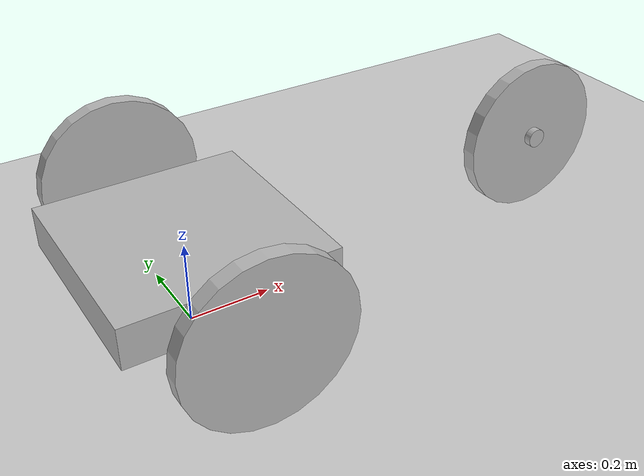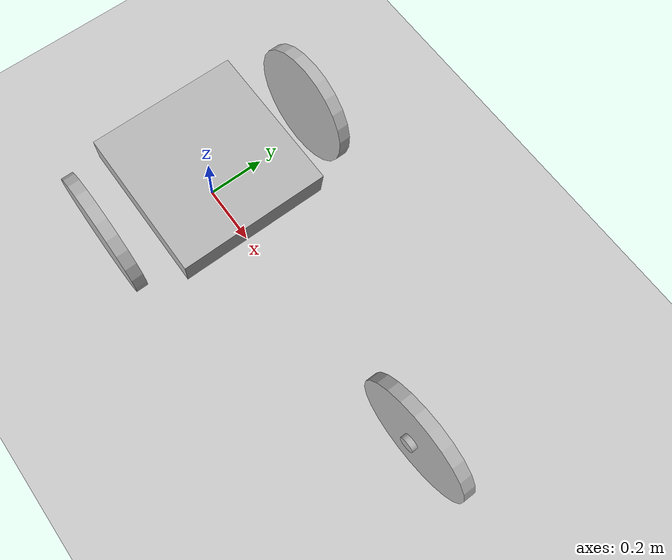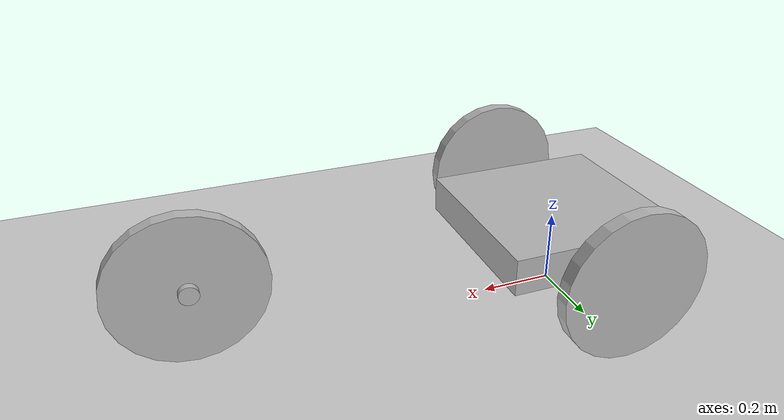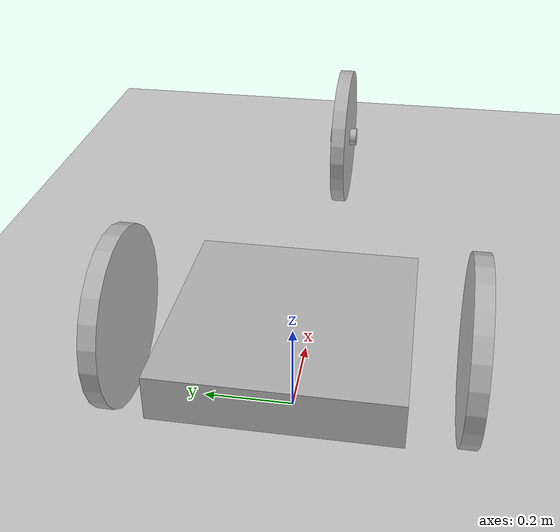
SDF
<?xml version="1.0" ?>
<sdf version="1.5">
     <world name="default">
          <!-- A global light source -->
          <include>
               <uri>model://sun</uri>
          </include>
          <!-- A ground plane -->
          <include>
               <uri>model://ground_plane</uri>
          </include>

		<include>
               <uri>model://TricycleBase</uri>
               <pose>0 0 0 0 0 0</pose>
          </include>

          <scene>
               <sky>
                    <clouds>
                         <speed>12</speed>
                    </clouds>
               </sky>
          </scene>

     </world>
</sdf>

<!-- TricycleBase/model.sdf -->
<sdf version='1.6'>
     <model name='tricycle_base'>

          <link name='base_link'>
               <pose frame=''>0 0 0 0 -0 0</pose>

               <inertial>
                    <pose frame=''>0 0 0.2 0 -0 0</pose>
                    <mass>10.001</mass>
                    <inertia>
                         <ixx>0.216767</ixx>
                         <ixy>0</ixy>
                         <ixz>0</ixz>
                         <iyy>0.216668</iyy>
                         <iyz>0</iyz>
                         <izz>0.416766</izz>
                    </inertia>
               </inertial>

               <visual name='base_link_fixed_joint_lump__chassis_visual_visual'>
                    <pose frame=''>0 0 0.2 0 -0 0</pose>
                    <geometry>
                         <box>
                              <size>0.5 0.5 0.1</size>
                         </box>
                    </geometry>
               </visual>

               <visual name='base_link_fixed_joint_lump__imu_link_visual_1'>
                    <pose frame=''>0 0 0.2 0 -0 0</pose>
                    <geometry>
                         <box>
                              <size>0.01 0.01 0.001</size>
                         </box>
                    </geometry>
               </visual>

               <collision name='base_link_fixed_joint_lump__chassis_collision'>
                    <pose frame=''>0 0 0.2 0 -0 0</pose>
                    <geometry>
                         <box>
                              <size>0.5 0.5 0.1</size>
                         </box>
                    </geometry>
               </collision>

               <collision name='base_link_fixed_joint_lump__imu_link_collision_1'>
                    <pose frame=''>0 0 0.2 0 -0 0</pose>
                    <geometry>
                         <box>
                              <size>0.01 0.01 0.001</size>
                         </box>
                    </geometry>
               </collision>
          </link>

          <link name='front_steering'>
               <pose frame=''>1 0 0.2 1.5708 -0 0</pose>
               <inertial>
                    <pose frame=''>0 0 0 0 -0 0</pose>
                    <mass>1</mass>
                    <inertia>
                         <ixx>0.000647258</ixx>
                         <ixy>0</ixy>
                         <ixz>0</ixz>
                         <iyy>0.000647258</iyy>
                         <iyz>0</iyz>
                         <izz>0.0003125</izz>
                    </inertia>
               </inertial>

               <visual name='front_steering_fixed_joint_lump__front_visual_visual'>
                    <pose frame=''>0 0 0 0 -0 0</pose>
                    <geometry>
                         <cylinder>
                              <length>0.07676</length>
                              <radius>0.025</radius>
                         </cylinder>
                    </geometry>
               </visual>
          </link>

          <link name='front_wheel'>
               <pose frame=''>1 0 0.2 1.5708 -0 0</pose>
               <gravity>1</gravity>

               <inertial>
                    <pose frame=''>0 0 0 0 -0 0</pose>
                    <mass>1</mass>
                    <inertia>
                         <ixx>0.0101227</ixx>
                         <ixy>0</ixy>
                         <ixz>0</ixz>
                         <iyy>0.0101227</iyy>
                         <iyz>0</iyz>
                         <izz>0.02</izz>
                    </inertia>
               </inertial>

               <visual name='front_wheel_visual_visual'>
                    <pose frame=''>0 0 0 0 -0 0</pose>
                    <geometry>
                         <cylinder>
                              <length>0.03838</length>
                              <radius>0.2</radius>
                         </cylinder>
                    </geometry>
               </visual>

               <collision name='front_wheel_collision'>
                    <pose frame=''>0 0 0 0 -0 0</pose>
                    <geometry>
                         <cylinder>
                              <radius>0.2</radius>
                              <length>0.03838</length>
                         </cylinder>
                    </geometry>
               </collision>
          </link>

          <link name='left_wheel'>
               <pose frame=''>-0 -0.375 0.2 -1.5708 -0 -0</pose>
               <inertial>
                    <pose frame=''>0 0 0 0 -0 0</pose>
                    <mass>1</mass>
                    <inertia>
                         <ixx>0.0101227</ixx>
                         <ixy>0</ixy>
                         <ixz>0</ixz>
                         <iyy>0.0101227</iyy>
                         <iyz>0</iyz>
                         <izz>0.02</izz>
                    </inertia>
               </inertial>

               <visual name='left_wheel_visual_visual'>
                    <pose frame=''>0 0 0 0 -0 0</pose>
                    <geometry>
                         <cylinder>
                              <length>0.03838</length>
                              <radius>0.2</radius>
                         </cylinder>
                    </geometry>
               </visual>

               <collision name='left_wheel_collision'>
                    <pose frame=''>0 0 0 0 -0 0</pose>
                    <geometry>
                         <cylinder>
                              <radius>0.2</radius>
                              <length>0.03838</length>
                         </cylinder>
                    </geometry>
               </collision>
          </link>

          <link name='right_wheel'>
               <pose frame=''>0 0.375 0.2 -1.5708 -0 -0</pose>

               <inertial>
                    <pose frame=''>0 0 0 0 -0 0</pose>
                    <mass>1</mass>
                    <inertia>
                         <ixx>0.0101227</ixx>
                         <ixy>0</ixy>
                         <ixz>0</ixz>
                         <iyy>0.0101227</iyy>
                         <iyz>0</iyz>
                         <izz>0.02</izz>
                    </inertia>
               </inertial>

               <visual name='right_wheel_visual_visual'>
                    <pose frame=''>0 0 0 0 -0 0</pose>
                    <geometry>
                         <cylinder>
                              <length>0.03838</length>
                              <radius>0.2</radius>
                         </cylinder>
                    </geometry>
               </visual>

               <collision name='right_wheel_collision'>
                    <pose frame=''>0 0 0 0 -0 0</pose>
                    <geometry>
                         <cylinder>
                              <radius>0.2</radius>
                              <length>0.03838</length>
                         </cylinder>
                    </geometry>

                    <surface>
                         <friction>
                              <ode>
                                   <mu>1</mu>
                                   <mu2>1</mu2>
                                   <fdir1>0 0 0</fdir1>
                                   <slip1>0</slip1>
                                   <slip2>0</slip2>
                              </ode>
                         </friction>
                    </surface>
               </collision>
          </link>

          <joint name='front_steering_joint' type='revolute'>
               <parent>base_link</parent>
               <child>front_steering</child>
               <pose frame=''>0 0 0 0 0 0</pose>
               <axis>
                    <xyz>0 0 1</xyz>
                    <use_parent_model_frame>1</use_parent_model_frame>
                    <limit>
                         <lower>-1.5708</lower>
                         <upper>1.5708</upper>
                         <effort>10</effort>
                         <velocity>10</velocity>
                    </limit>
               </axis>
          </joint>

          <joint name='front_wheel_joint' type='revolute'>
               <parent>front_steering</parent>
               <child>front_wheel</child>
               <pose frame=''>0 0 0 0 0 0</pose>
               <axis>
                    <xyz>0 1 0</xyz>
                    <use_parent_model_frame>1</use_parent_model_frame>
                    <limit>
                         <lower>-1e+16</lower>
                         <upper>1e+16</upper>
                         <effort>-1</effort>
                         <velocity>-1</velocity>
                    </limit>
               </axis>
          </joint>

          <joint name='left_wheel_joint' type='revolute'>
               <parent>base_link</parent>
               <child>left_wheel</child>
               <pose frame=''>0 0 0 0 -0 0</pose>
               <axis>
                    <xyz>0 1 0</xyz>
                    <use_parent_model_frame>1</use_parent_model_frame>
                    <limit>
                         <lower>-1e+16</lower>
                         <upper>1e+16</upper>
                         <effort>-1</effort>
                         <velocity>-1</velocity>
                    </limit>
               </axis>
          </joint>

          <joint name='right_wheel_joint' type='revolute'>
               <parent>base_link</parent>
               <child>right_wheel</child>
               <pose frame=''>0 0 0 0 -0 0</pose>
               <axis>
                    <xyz>0 1 0</xyz>
                    <use_parent_model_frame>1</use_parent_model_frame>
                    <limit>
                         <lower>-1e+16</lower>
                         <upper>1e+16</upper>
                         <effort>-1</effort>
                         <velocity>-1</velocity>
                    </limit>
               </axis>
          </joint>

          <plugin name='imu_controller' filename='libhector_gazebo_ros_imu.so'>
               <alwaysOn>true</alwaysOn>
               <topicName>tricycle/imu</topicName>
               <serviceName>imu/service</serviceName>
               <updateRate>50.0</updateRate>
               <gaussianNoise>0.005</gaussianNoise>
               <yawOffset>0.0</yawOffset>
               <yawDrift>0.02</yawDrift>
               <yawGaussianNoise>0.01</yawGaussianNoise>
               <rateOffset>0.0 0.0 0.0</rateOffset>
               <rateDrift>0.002 0.002 0.002</rateDrift>
               <rateGaussianNoise>0.001 0.001 0.001</rateGaussianNoise>
               <accelOffset>0.0 0.0 0.0</accelOffset>
               <accelDrift>0.005 0.005 0.005</accelDrift>
               <accelGaussianNoise>0.005 0.005 0.005</accelGaussianNoise>
               <robotNamespace>/</robotNamespace>
               <bodyName>base_link</bodyName>
               <xyzOffset>0 0 -0.2</xyzOffset>
               <rpyOffset>0 -0 0</rpyOffset>
          </plugin>

          <plugin name='tricycle_drive_controller' filename='libTricycleDriveModPlugin.so'>
               <rosDebugLevel>Debug</rosDebugLevel>
               <robotNamespace/>
               <publishWheelTF>true</publishWheelTF>
               <publishWheelJointState>true</publishWheelJointState>
               <alwaysOn>true</alwaysOn>
               <steeringJoint>front_steering_joint</steeringJoint>
               <actuatedWheelJoint>front_wheel_joint</actuatedWheelJoint>
               <encoderWheelLeftJoint>left_wheel_joint</encoderWheelLeftJoint>
               <encoderWheelRightJoint>right_wheel_joint</encoderWheelRightJoint>
               <actuatedWheelDiameter>0.2</actuatedWheelDiameter>
               <encoderWheelDiameter>0.2</encoderWheelDiameter>
               <encoderWheelSeparation>0.75</encoderWheelSeparation>
               <commandTopic>cmd_vel</commandTopic>
               <odometryTopic>odom</odometryTopic>
               <odometryFrame>odom</odometryFrame>
               <odometrySource>encoder</odometrySource>
               <robotBaseFrame>base_link</robotBaseFrame>
               <updateRate>50.0</updateRate>
               <wheelAcceleration>100.0</wheelAcceleration>
               <wheelDeceleration>100.0</wheelDeceleration>
               <wheelSpeedTolerance>0.05</wheelSpeedTolerance>
               <wheelTorque>5</wheelTorque>
               <steeringSpeed>1.5</steeringSpeed>
               <steeringAngleTolerance>0.03</steeringAngleTolerance>
               <steeringAngleLimit>1.5708</steeringAngleLimit>
          </plugin>

     </model>
</sdf>
